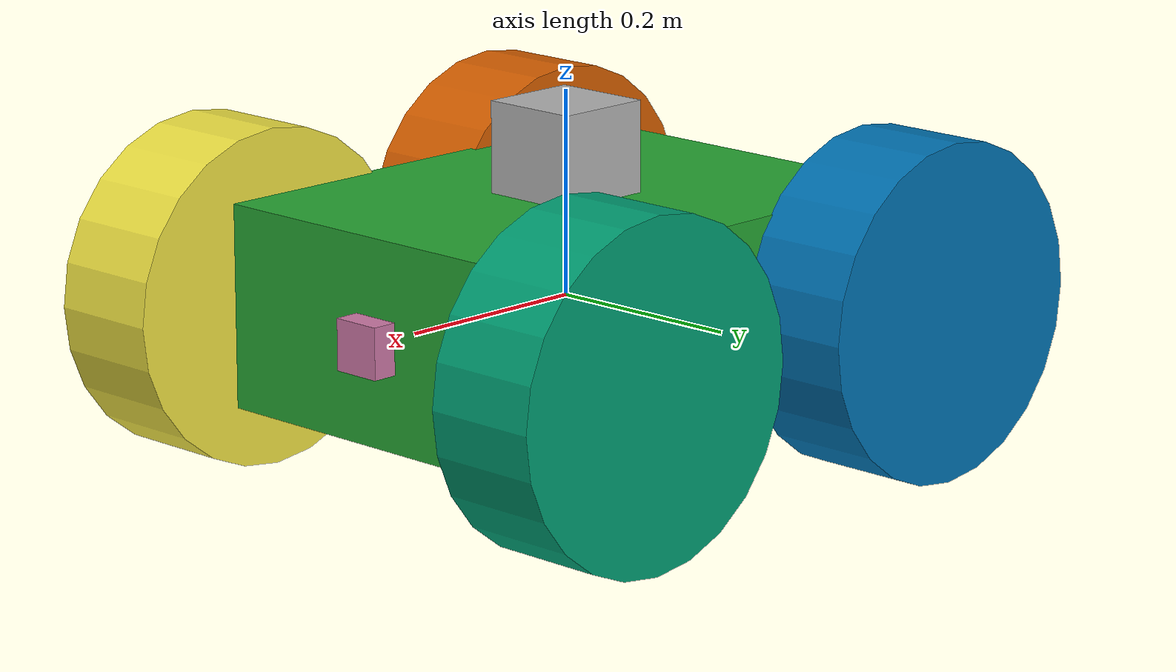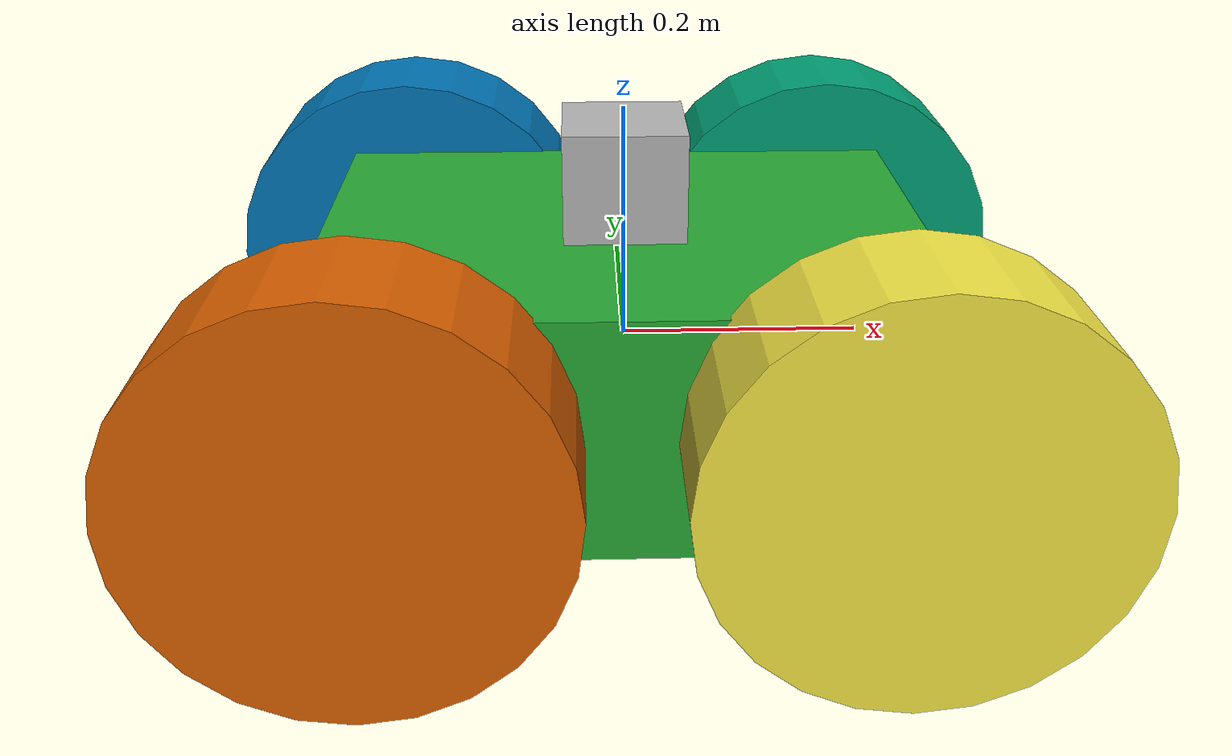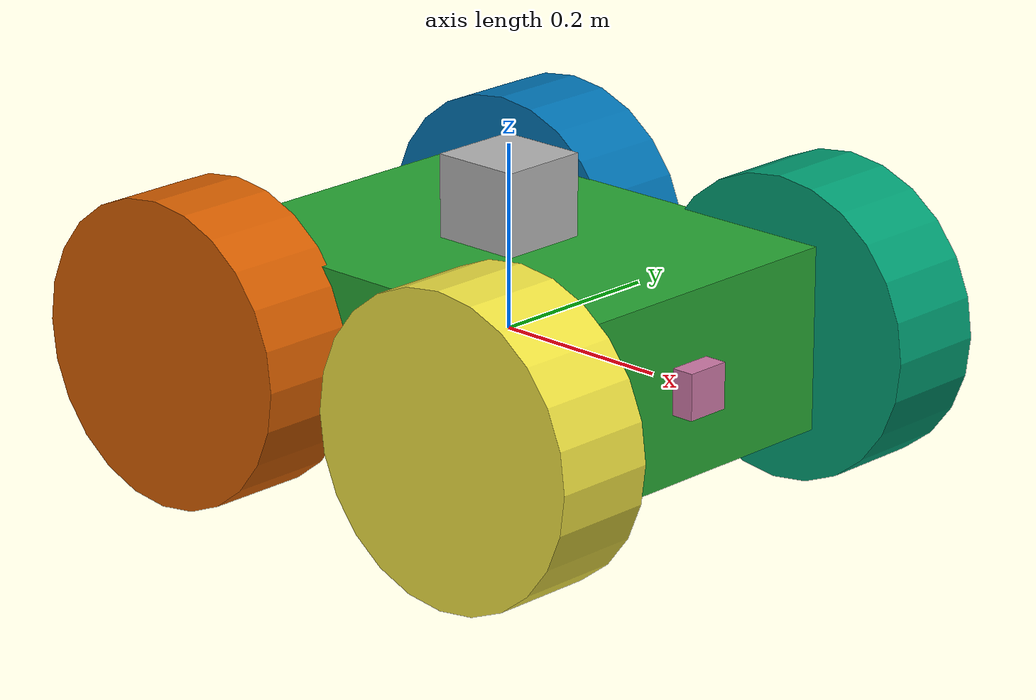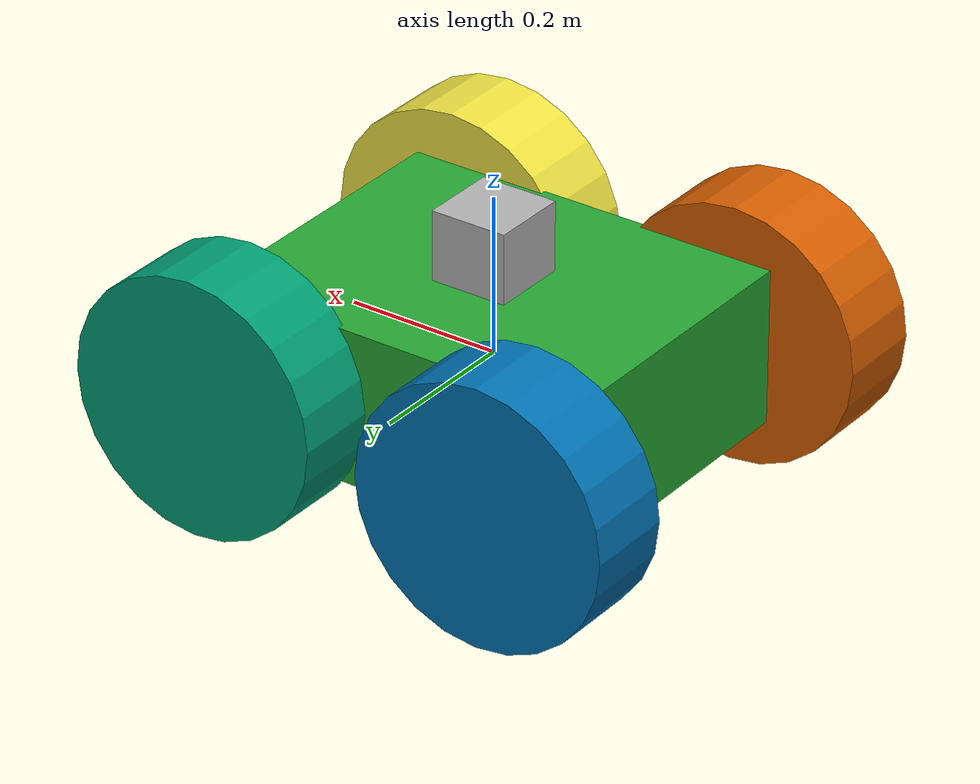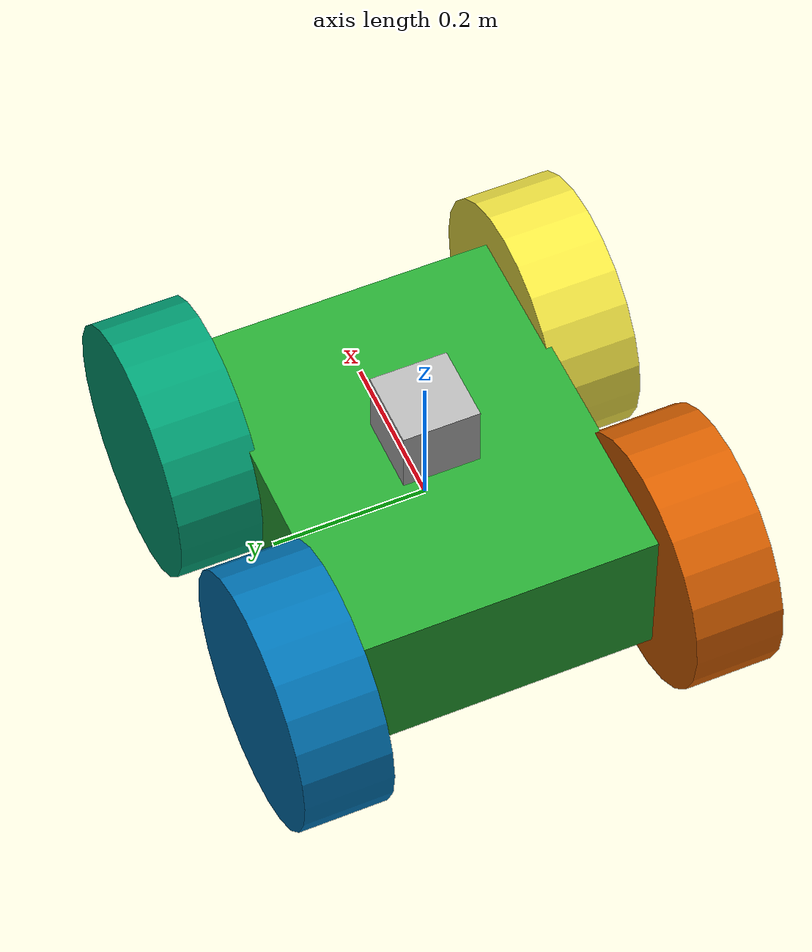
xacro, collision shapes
<?xml version='1.0'?>

<robot name="my_robot" xmlns:xacro="http://www.ros.org/wiki/xacro">

  <xacro:include filename="$(find my_robot)/urdf/my_robot.gazebo" />

  <link name="robot_footprint"></link>

  <joint name="robot_footprint_joint" type="fixed">
    <origin xyz="0 0 0" rpy="0 0 0" />
    <parent link="robot_footprint"/>
    <child link="chassis" />
  </joint>

  <link name='chassis'>
    <pose>0 0 0.1 0 0 0</pose>

    <inertial>
      <mass value="15.0"/>
      <origin xyz="0.0 0 0" rpy=" 0 0 0"/>
      <inertia
          ixx="0.1" ixy="0" ixz="0"
          iyy="0.1" iyz="0"
          izz="0.1"
      />
    </inertial>

    <collision name='collision'>
      <origin xyz="0 0 0" rpy=" 0 0 0"/>
      <geometry>
        <box size=".5 .4 .2"/>
      </geometry>
    </collision>

    <visual name='chassis_visual'>
      <origin xyz="0 0 0" rpy=" 0 0 0"/>
      <geometry>
        <box size=".5 .4 .2"/>
      </geometry>
    </visual>

  </link>

  <link name='front_left_wheel'>
    <collision>
      <origin xyz='0 0 0' rpy='-1.57079 0 0'/>
      <geometry>
        <cylinder radius='0.1651' length='0.1143'/>
      </geometry>
    </collision>
    <visual>
      <origin xyz="0 0 0" rpy="0 -0 0"/>
      <geometry>
        <mesh filename="package://my_robot/meshes/wheel.dae" scale='0.75 0.75 0.75'/>
      </geometry>
    </visual>
    <inertial>
      <origin xyz='0 0 0' rpy='0 -0 0'/>
      <mass value='2.637'/>
      <inertia ixx='0.02467' ixy='0' ixz='0' iyy='0.04411' iyz='0' izz='0.02467'/>
    </inertial>
  </link>

  <link name='front_right_wheel'>
    <collision>
      <origin xyz='0 0 0' rpy='-1.57079 0 0'/>
      <geometry>
        <cylinder radius='0.1651' length='0.1143'/>
      </geometry>
    </collision>
    <visual>
      <origin xyz="0 0 0" rpy="0 -0 0"/>
      <geometry>
        <mesh filename="package://my_robot/meshes/wheel.dae" scale='0.75 0.75 0.75'/>
      </geometry>
    </visual>
    <inertial>
      <origin xyz='0 0 0' rpy='0 -0 0'/>
      <mass value='2.637'/>
      <inertia ixx='0.02467' ixy='0' ixz='0' iyy='0.04411' iyz='0' izz='0.02467'/>
    </inertial>
  </link>

  <link name='back_left_wheel'>
    <collision>
      <origin xyz='0 0 0' rpy='-1.57079 0 0'/>
      <geometry>
        <cylinder radius='0.1651' length='0.1143'/>
      </geometry>
    </collision>
    <visual>
      <origin xyz="0 0 0" rpy="0 -0 0"/>
      <geometry>
        <mesh filename="package://my_robot/meshes/wheel.dae" scale='0.75 0.75 0.75'/>
      </geometry>
    </visual>
    <inertial>
      <origin xyz='0 0 0' rpy='0 -0 0'/>
      <mass value='2.637'/>
      <inertia ixx='0.02467' ixy='0' ixz='0' iyy='0.04411' iyz='0' izz='0.02467'/>
    </inertial>
  </link>

  <link name='back_right_wheel'>
    <collision>
      <origin xyz='0 0 0' rpy='-1.57079 0 0'/>
      <geometry>
        <cylinder radius='0.1651' length='0.1143'/>
      </geometry>
    </collision>
    <visual>
      <origin xyz="0 0 0" rpy="0 -0 0"/>
      <geometry>
        <mesh filename="package://my_robot/meshes/wheel.dae" scale='0.75 0.75 0.75'/>
      </geometry>
    </visual>
    <inertial>
      <origin xyz='0 0 0' rpy='0 -0 0'/>
      <mass value='2.637'/>
      <inertia ixx='0.02467' ixy='0' ixz='0' iyy='0.04411' iyz='0' izz='0.02467'/>
    </inertial>
  </link>

  <joint type="continuous" name="front_left_wheel_hinge">
    <origin xyz="0.2 0.25 0" rpy="0 0 0"/>
    <child link="front_left_wheel"/>
    <parent link="chassis"/>
    <axis xyz="0 1 0" rpy="0 0 0"/>
    <limit effort="10000" velocity="1000"/>
    <dynamics damping="1.0" friction="1.0"/>
  </joint>

  <joint type="continuous" name="front_right_wheel_hinge">
    <origin xyz="0.2 -0.25 0" rpy="0 0 0"/>
    <child link="front_right_wheel"/>
    <parent link="chassis"/>
    <axis xyz="0 1 0" rpy="0 0 0"/>
    <limit effort="10000" velocity="1000"/>
    <dynamics damping="1.0" friction="1.0"/>
  </joint>

  <joint type="continuous" name="rear_left_wheel_hinge">
    <origin xyz="-0.2 0.255555 0" rpy="0 0 0"/>
    <child link="back_left_wheel"/>
    <parent link="chassis"/>
    <axis xyz="0 1 0" rpy="0 0 0"/>
    <limit effort="10000" velocity="1000"/>
    <dynamics damping="1.0" friction="1.0"/>
  </joint>

  <joint type="continuous" name="rear_right_wheel_hinge">
    <origin xyz="-0.2 -0.25 0" rpy="0 0 0"/>
    <child link="back_right_wheel"/>
    <parent link="chassis"/>
    <axis xyz="0 1 0" rpy="0 0 0"/>
    <limit effort="10000" velocity="1000"/>
    <dynamics damping="1.0" friction="1.0"/>
  </joint>

  <link name="camera">
    <inertial>
      <mass value="0.1" />
      <origin xyz="0 0 0" rpy="0 0 0" />
      <box_inertia m="0.1" x="0.05" y="0.05" z="0.05"/>
      <inertia
        ixx="1e-6" ixy="0" ixz="0"
        iyy="1e-6" iyz="0"
        izz="1e-6"
      />
    </inertial>
    <collision>
      <origin xyz="0 0 0" rpy="0 0 0" />
      <geometry>
        <box  size="0.05 0.05 0.05"/>
      </geometry>
    </collision>
    <visual>
     <origin xyz="0 0 0" rpy="0 0 0" />
      <geometry>
        <mesh filename="package://my_robot/meshes/realsense.dae" />
      </geometry>
    </visual>
  </link>

  <joint type="fixed" name="camera_joint">
    <axis xyz="0 1 0"/>
    <origin xyz="0.25 0 0" rpy="0 0 0" />
    <parent link="chassis" />
    <child link="camera" />
  </joint>

  <link name="hokuyo">
    <inertial>
      <mass value="1e-5" />
      <origin xyz="0 0 0" rpy="0 0 0" />
      <inertia
        ixx="1e-6" ixy="0" ixz="0"
        iyy="1e-6" iyz="0"
        izz="1e-6"
      />
    </inertial>
    <collision>
      <origin xyz="0 0 0" rpy="0 0 0" />
      <geometry>
        <box  size="0.1 0.1 0.1"/>
      </geometry>
    </collision>
    <visual>
      <origin xyz="0 0 0" rpy="0 0 0" />
      <geometry>
        <mesh filename="package://my_robot/meshes/hokuyo.dae" />
      </geometry>
    </visual>
  </link>

  <joint type="fixed" name="hokuyo_joint">
    <axis xyz="0 1 0"/>
    <origin xyz="0 0 0.14" rpy="0 0 0" />
    <parent link="chassis" />
    <child link="hokuyo" />
  </joint>

  <gazebo reference="chassis">
    <material>Gazebo/Green</material>
  </gazebo>

</robot>
